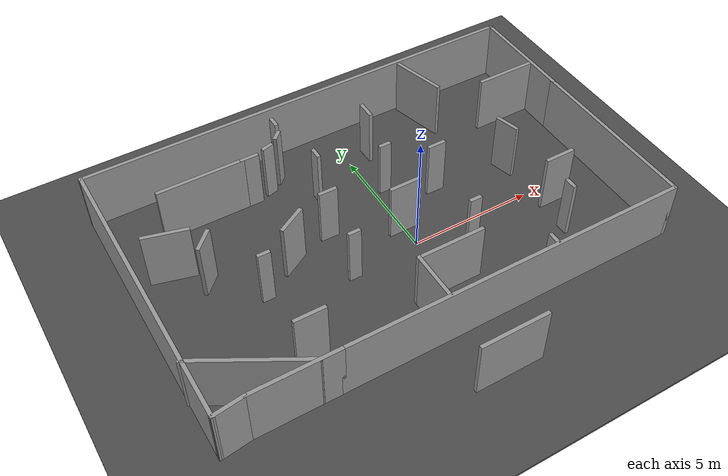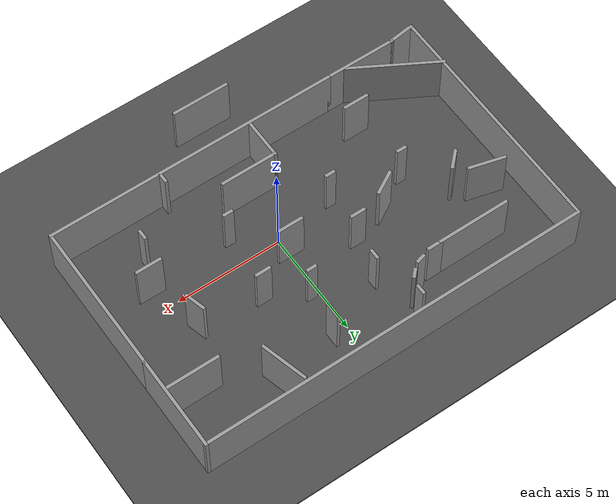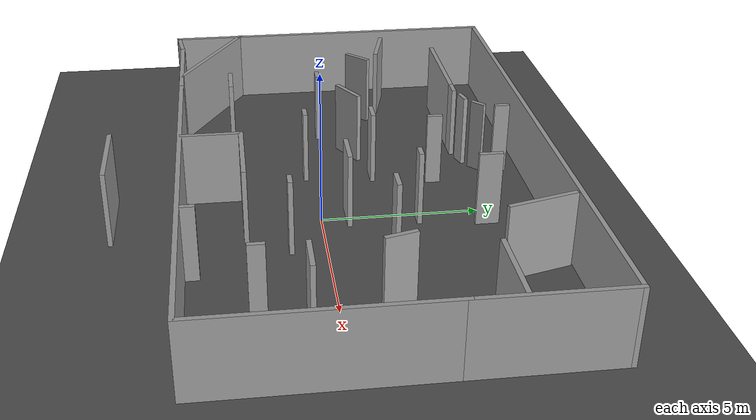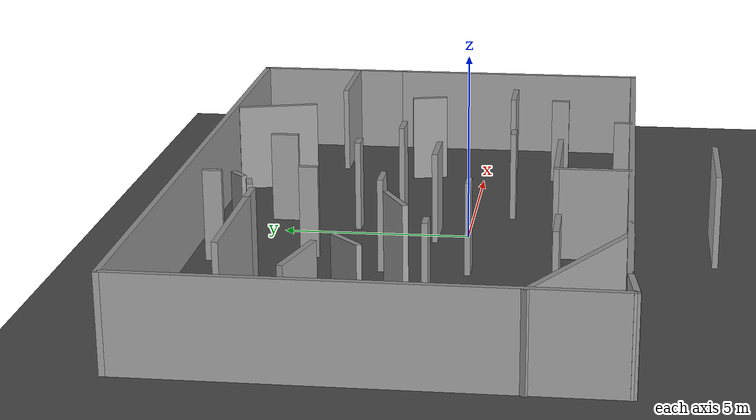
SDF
<sdf version="1.6">
 <world name="default">
  <light name="sun" type="directional">
   <pose>0 0 10 0 -0 0</pose>
   <diffuse>0.8 0.8 0.8 1</diffuse>
   <specular>0.2 0.2 0.2 1</specular>
   <attenuation>
    <range>1000</range>
    <constant>0.9</constant>
    <linear>0.01</linear>
    <quadratic>0.001</quadratic>
   </attenuation>
   <direction>-0.5 0.1 -0.9</direction>
  </light>
  <model name="asphalt_plane">
   <static>1</static>
   <link name="link">
    <collision name="collision"><geometry><box><size>200 200 0.1</size></box></geometry></collision>
    <visual name="visual">
     <cast_shadows>0</cast_shadows>
     <geometry><box><size>200 200 0.1</size></box></geometry>
     <material>
      <script>
       <uri>model://asphalt_plane/materials/scripts</uri>
       <uri>model://asphalt_plane/materials/textures</uri>
       <name>vrc/asphalt</name>
      </script>
     </material>
    </visual>
   </link>
  </model>
  <physics name="default_physics" default="0" type="ode">
   <ode>
    <solver>
     <type>quick</type>
     <iters>10</iters>
     <sor>1.3</sor>
     <use_dynamic_moi_rescaling>0</use_dynamic_moi_rescaling>
    </solver>
    <constraints>
     <cfm>0</cfm>
     <erp>0.2</erp>
     <contact_max_correcting_vel>100</contact_max_correcting_vel>
     <contact_surface_layer>0.001</contact_surface_layer>
    </constraints>
   </ode>
   <max_step_size>0.001</max_step_size>
   <real_time_factor>1</real_time_factor>
   <real_time_update_rate>1000</real_time_update_rate>
  </physics>
  <gravity>0 0 -9.8066</gravity>
  <magnetic_field>6e-06 2.3e-05 -4.2e-05</magnetic_field>
  <atmosphere type="adiabatic"/>
  <scene><ambient>0.4 0.4 0.4 1</ambient><background>0.7 0.7 0.7 1</background><shadows>1</shadows></scene>
  <spherical_coordinates>
   <surface_model>EARTH_WGS84</surface_model>
   <latitude_deg>0</latitude_deg>
   <longitude_deg>0</longitude_deg>
   <elevation>0</elevation>
   <heading_deg>0</heading_deg>
  </spherical_coordinates>
  <model name="static-obstacles">
   <pose>-0.962403 0.304793 0 0 -0 0</pose>
   <link name="Wall_0">
    <collision name="Wall_0_Collision">
     <geometry><box><size>2.75 0.15 2.5</size></box></geometry>
     <pose>0 0 1.25 0 -0 0</pose>
    </collision>
    <visual name="Wall_0_Visual">
     <pose>0 0 1.25 0 -0 0</pose>
     <geometry><box><size>2.75 0.15 2.5</size></box></geometry>
     <material>
      <script><uri>file://media/materials/scripts/gazebo.material</uri><name>Gazebo/Grey</name></script>
      <ambient>1 1 1 1</ambient>
     </material>
     <meta><layer>0</layer></meta>
    </visual>
    <pose>0.752403 -2.70479 0 0 -0 0</pose>
   </link>
   <link name="Wall_12">
    <collision name="Wall_12_Collision">
     <geometry><box><size>0.75 0.15 2.5</size></box></geometry>
     <pose>0 0 1.25 0 -0 0</pose>
    </collision>
    <visual name="Wall_12_Visual">
     <pose>0 0 1.25 0 -0 0</pose>
     <geometry><box><size>0.75 0.15 2.5</size></box></geometry>
     <material>
      <script><uri>file://media/materials/scripts/gazebo.material</uri><name>Gazebo/Grey</name></script>
      <ambient>1 1 1 1</ambient>
     </material>
     <meta><layer>0</layer></meta>
    </visual>
    <pose>-1.68881 1.66179 0 0 -0 0</pose>
   </link>
   <link name="Wall_14">
    <collision name="Wall_14_Collision">
     <geometry><box><size>0.75 0.15 2.5</size></box></geometry>
     <pose>0 0 1.25 0 -0 0</pose>
    </collision>
    <visual name="Wall_14_Visual">
     <pose>0 0 1.25 0 -0 0</pose>
     <geometry><box><size>0.75 0.15 2.5</size></box></geometry>
     <material>
      <script><uri>file://media/materials/scripts/gazebo.material</uri><name>Gazebo/Grey</name></script>
      <ambient>1 1 1 1</ambient>
     </material>
     <meta><layer>0</layer></meta>
    </visual>
    <pose>3.07609 1.73118 0 0 -0 0</pose>
   </link>
   <link name="Wall_16">
    <collision name="Wall_16_Collision">
     <geometry><box><size>0.5 0.15 2.5</size></box></geometry>
     <pose>0 0 1.25 0 -0 0</pose>
    </collision>
    <visual name="Wall_16_Visual">
     <pose>0 0 1.25 0 -0 0</pose>
     <geometry><box><size>0.5 0.15 2.5</size></box></geometry>
     <material>
      <script><uri>file://media/materials/scripts/gazebo.material</uri><name>Gazebo/Grey</name></script>
      <ambient>1 1 1 1</ambient>
     </material>
     <meta><layer>0</layer></meta>
    </visual>
    <pose>-1.86008 -0.558747 0 0 -0 0</pose>
   </link>
   <link name="Wall_18">
    <collision name="Wall_18_Collision">
     <geometry><box><size>0.5 0.15 2.5</size></box></geometry>
     <pose>0 0 1.25 0 -0 0</pose>
    </collision>
    <visual name="Wall_18_Visual">
     <pose>0 0 1.25 0 -0 0</pose>
     <geometry><box><size>0.5 0.15 2.5</size></box></geometry>
     <material>
      <script><uri>file://media/materials/scripts/gazebo.material</uri><name>Gazebo/Grey</name></script>
      <ambient>1 1 1 1</ambient>
     </material>
     <meta><layer>0</layer></meta>
    </visual>
    <pose>2.69665 -1.39145 0 0 -0 0</pose>
   </link>
   <link name="Wall_2">
    <collision name="Wall_2_Collision">
     <geometry><box><size>3.5 0.15 2.5</size></box></geometry>
     <pose>0 0 1.25 0 -0 0</pose>
    </collision>
    <visual name="Wall_2_Visual">
     <pose>0 0 1.25 0 -0 0</pose>
     <geometry><box><size>3.5 0.15 2.5</size></box></geometry>
     <material>
      <script><uri>file://media/materials/scripts/gazebo.material</uri><name>Gazebo/Grey</name></script>
      <ambient>1 1 1 1</ambient>
     </material>
     <meta><layer>0</layer></meta>
    </visual>
    <pose>-6.31249 -4.62827 0 0 -0 0</pose>
   </link>
   <link name="Wall_20">
    <collision name="Wall_20_Collision">
     <geometry><box><size>0.5 0.15 2.5</size></box></geometry>
     <pose>0 0 1.25 0 -0 0</pose>
    </collision>
    <visual name="Wall_20_Visual">
     <pose>0 0 1.25 0 -0 0</pose>
     <geometry><box><size>0.5 0.15 2.5</size></box></geometry>
     <material>
      <script><uri>file://media/materials/scripts/gazebo.material</uri><name>Gazebo/Grey</name></script>
      <ambient>1 1 1 1</ambient>
     </material>
     <meta><layer>0</layer></meta>
    </visual>
    <pose>1.37821 2.7258 0 0 -0 0</pose>
   </link>
   <link name="Wall_22">
    <collision name="Wall_22_Collision">
     <geometry><box><size>0.5 0.15 2.5</size></box></geometry>
     <pose>0 0 1.25 0 -0 0</pose>
    </collision>
    <visual name="Wall_22_Visual">
     <pose>0 0 1.25 0 -0 0</pose>
     <geometry><box><size>0.5 0.15 2.5</size></box></geometry>
     <material>
      <script><uri>file://media/materials/scripts/gazebo.material</uri><name>Gazebo/Grey</name></script>
      <ambient>1 1 1 1</ambient>
     </material>
     <meta><layer>0</layer></meta>
    </visual>
    <pose>-5.00584 0.158302 0 0 -0 0</pose>
   </link>
   <link name="Wall_24">
    <collision name="Wall_24_Collision">
     <geometry><box><size>1.25 0.15 2.5</size></box></geometry>
     <pose>0 0 1.25 0 -0 0</pose>
    </collision>
    <visual name="Wall_24_Visual">
     <pose>0 0 1.25 0 -0 0</pose>
     <geometry><box><size>1.25 0.15 2.5</size></box></geometry>
     <material>
      <script><uri>file://media/materials/scripts/gazebo.material</uri><name>Gazebo/Grey</name></script>
      <ambient>1 1 1 1</ambient>
     </material>
     <meta><layer>0</layer></meta>
    </visual>
    <pose>-3.45547 1.08096 0 0 -0 0.523599</pose>
   </link>
   <link name="Wall_26">
    <collision name="Wall_26_Collision">
     <geometry><box><size>14 0.15 2.5</size></box></geometry>
     <pose>0 0 1.25 0 -0 0</pose>
    </collision>
    <visual name="Wall_26_Visual">
     <pose>0 0 1.25 0 -0 0</pose>
     <geometry><box><size>14 0.15 2.5</size></box></geometry>
     <material>
      <script><uri>file://media/materials/scripts/gazebo.material</uri><name>Gazebo/Grey</name></script>
      <ambient>1 1 1 1</ambient>
     </material>
     <meta><layer>0</layer></meta>
    </visual>
    <pose>2.28751 -4.62827 0 0 -0 0</pose>
   </link>
   <link name="Wall_27">
    <collision name="Wall_27_Collision">
     <geometry><box><size>7.25 0.15 2.5</size></box></geometry>
     <pose>0 0 1.25 0 -0 0</pose>
    </collision>
    <visual name="Wall_27_Visual">
     <pose>0 0 1.25 0 -0 0</pose>
     <geometry><box><size>7.25 0.15 2.5</size></box></geometry>
     <material>
      <script><uri>file://media/materials/scripts/gazebo.material</uri><name>Gazebo/Grey</name></script>
      <ambient>1 1 1 1</ambient>
     </material>
     <meta><layer>0</layer></meta>
    </visual>
    <pose>9.21251 -1.07827 0 0 -0 1.5708</pose>
   </link>
   <link name="Wall_28">
    <collision name="Wall_28_Collision">
     <geometry><box><size>4.5 0.15 2.5</size></box></geometry>
     <pose>0 0 1.25 0 -0 0</pose>
    </collision>
    <visual name="Wall_28_Visual">
     <pose>0 0 1.25 0 -0 0</pose>
     <geometry><box><size>4.5 0.15 2.5</size></box></geometry>
     <material>
      <script><uri>file://media/materials/scripts/gazebo.material</uri><name>Gazebo/Grey</name></script>
      <ambient>1 1 1 1</ambient>
     </material>
     <meta><layer>0</layer></meta>
    </visual>
    <pose>9.21251 4.64673 0 0 -0 1.5708</pose>
   </link>
   <link name="Wall_29">
    <collision name="Wall_29_Collision">
     <geometry><box><size>18.5 0.15 2.5</size></box></geometry>
     <pose>0 0 1.25 0 -0 0</pose>
    </collision>
    <visual name="Wall_29_Visual">
     <pose>0 0 1.25 0 -0 0</pose>
     <geometry><box><size>18.5 0.15 2.5</size></box></geometry>
     <material>
      <script><uri>file://media/materials/scripts/gazebo.material</uri><name>Gazebo/Grey</name></script>
      <ambient>1 1 1 1</ambient>
     </material>
     <meta><layer>0</layer></meta>
    </visual>
    <pose>0.037514 6.82173 0 0 -0 3.14159</pose>
   </link>
   <link name="Wall_30">
    <collision name="Wall_30_Collision">
     <geometry><box><size>11.75 0.15 2.5</size></box></geometry>
     <pose>0 0 1.25 0 -0 0</pose>
    </collision>
    <visual name="Wall_30_Visual">
     <pose>0 0 1.25 0 -0 0</pose>
     <geometry><box><size>11.75 0.15 2.5</size></box></geometry>
     <material>
      <script><uri>file://media/materials/scripts/gazebo.material</uri><name>Gazebo/Grey</name></script>
      <ambient>1 1 1 1</ambient>
     </material>
     <meta><layer>0</layer></meta>
    </visual>
    <pose>-9.13749 1.02173 0 0 -0 -1.5708</pose>
   </link>
   <link name="Wall_31">
    <collision name="Wall_31_Collision">
     <geometry><box><size>1.30974 0.15 2.5</size></box></geometry>
     <pose>0 0 1.25 0 -0 0</pose>
    </collision>
    <visual name="Wall_31_Visual">
     <pose>0 0 1.25 0 -0 0</pose>
     <geometry><box><size>1.30974 0.15 2.5</size></box></geometry>
     <material>
      <script><uri>file://media/materials/scripts/gazebo.material</uri><name>Gazebo/Grey</name></script>
      <ambient>1 1 1 1</ambient>
     </material>
     <meta><layer>0</layer></meta>
    </visual>
    <pose>-8.56249 -4.70327 0 0 -0 0.129703</pose>
   </link>
   <link name="Wall_33">
    <collision name="Wall_33_Collision">
     <geometry><box><size>2.25 0.15 2.5</size></box></geometry>
     <pose>0 0 1.25 0 -0 0</pose>
    </collision>
    <visual name="Wall_33_Visual">
     <pose>0 0 1.25 0 -0 0</pose>
     <geometry><box><size>2.25 0.15 2.5</size></box></geometry>
     <material>
      <script><uri>file://media/materials/scripts/gazebo.material</uri><name>Gazebo/Grey</name></script>
      <ambient>1 1 1 1</ambient>
     </material>
     <meta><layer>0</layer></meta>
    </visual>
    <pose>4.7182 5.60791 0 0 -0 -1.309</pose>
   </link>
   <link name="Wall_35">
    <collision name="Wall_35_Collision">
     <geometry><box><size>2.5 0.15 2.5</size></box></geometry>
     <pose>0 0 1.25 0 -0 0</pose>
    </collision>
    <visual name="Wall_35_Visual">
     <pose>0 0 1.25 0 -0 0</pose>
     <geometry><box><size>2.5 0.15 2.5</size></box></geometry>
     <material>
      <script><uri>file://media/materials/scripts/gazebo.material</uri><name>Gazebo/Grey</name></script>
      <ambient>1 1 1 1</ambient>
     </material>
     <meta><layer>0</layer></meta>
    </visual>
    <pose>7.90112 3.92375 0 0 -0 0</pose>
   </link>
   <link name="Wall_38">
    <collision name="Wall_38_Collision">
     <geometry><box><size>0.75 0.15 2.5</size></box></geometry>
     <pose>0 0 1.25 0 -0 0</pose>
    </collision>
    <visual name="Wall_38_Visual">
     <pose>0 0 1.25 0 -0 0</pose>
     <geometry><box><size>0.75 0.15 2.5</size></box></geometry>
     <material>
      <script><uri>file://media/materials/scripts/gazebo.material</uri><name>Gazebo/Grey</name></script>
      <ambient>1 1 1 1</ambient>
     </material>
     <meta><layer>0</layer></meta>
    </visual>
    <pose>-3.34872 4.71465 0 0 -0 0</pose>
   </link>
   <link name="Wall_40">
    <collision name="Wall_40_Collision">
     <geometry><box><size>0.5 0.15 2.5</size></box></geometry>
     <pose>0 0 1.25 0 -0 0</pose>
    </collision>
    <visual name="Wall_40_Visual">
     <pose>0 0 1.25 0 -0 0</pose>
     <geometry><box><size>0.5 0.15 2.5</size></box></geometry>
     <material>
      <script><uri>file://media/materials/scripts/gazebo.material</uri><name>Gazebo/Grey</name></script>
      <ambient>1 1 1 1</ambient>
     </material>
     <meta><layer>0</layer></meta>
    </visual>
    <pose>-1.0899 3.6557 0 0 -0 -1.5708</pose>
   </link>
   <link name="Wall_42">
    <collision name="Wall_42_Collision">
     <geometry><box><size>0.75 0.15 2.5</size></box></geometry>
     <pose>0 0 1.25 0 -0 0</pose>
    </collision>
    <visual name="Wall_42_Visual">
     <pose>0 0 1.25 0 -0 0</pose>
     <geometry><box><size>0.75 0.15 2.5</size></box></geometry>
     <material>
      <script><uri>file://media/materials/scripts/gazebo.material</uri><name>Gazebo/Grey</name></script>
      <ambient>1 1 1 1</ambient>
     </material>
     <meta><layer>0</layer></meta>
    </visual>
    <pose>1.79458 4.83337 0 0 -0 -1.5708</pose>
   </link>
   <link name="Wall_44">
    <collision name="Wall_44_Collision">
     <geometry><box><size>1.25 0.15 2.5</size></box></geometry>
     <pose>0 0 1.25 0 -0 0</pose>
    </collision>
    <visual name="Wall_44_Visual">
     <pose>0 0 1.25 0 -0 0</pose>
     <geometry><box><size>1.25 0.15 2.5</size></box></geometry>
     <material>
      <script><uri>file://media/materials/scripts/gazebo.material</uri><name>Gazebo/Grey</name></script>
      <ambient>1 1 1 1</ambient>
     </material>
     <meta><layer>0</layer></meta>
    </visual>
    <pose>6.71783 -1.14736 0 0 -0 0</pose>
   </link>
   <link name="Wall_46">
    <collision name="Wall_46_Collision">
     <geometry><box><size>1 0.15 2.5</size></box></geometry>
     <pose>0 0 1.25 0 -0 0</pose>
    </collision>
    <visual name="Wall_46_Visual">
     <pose>0 0 1.25 0 -0 0</pose>
     <geometry><box><size>1 0.15 2.5</size></box></geometry>
     <material>
      <script><uri>file://media/materials/scripts/gazebo.material</uri><name>Gazebo/Grey</name></script>
      <ambient>1 1 1 1</ambient>
     </material>
     <meta><layer>0</layer></meta>
    </visual>
    <pose>6.09173 1.32661 0 0 -0 -1.309</pose>
   </link>
   <link name="Wall_48">
    <collision name="Wall_48_Collision">
     <geometry><box><size>2 0.15 2.5</size></box></geometry>
     <pose>0 0 1.25 0 -0 0</pose>
    </collision>
    <visual name="Wall_48_Visual">
     <pose>0 0 1.25 0 -0 0</pose>
     <geometry><box><size>2 0.15 2.5</size></box></geometry>
     <material>
      <script><uri>file://media/materials/scripts/gazebo.material</uri><name>Gazebo/Grey</name></script>
      <ambient>1 1 1 1</ambient>
     </material>
     <meta><layer>0</layer></meta>
    </visual>
    <pose>-0.547597 -3.62979 0 0 -0 -1.5708</pose>
   </link>
   <link name="Wall_5">
    <collision name="Wall_5_Collision">
     <geometry><box><size>2.75 0.15 2.5</size></box></geometry>
     <pose>0 0 1.25 0 -0 0</pose>
    </collision>
    <visual name="Wall_5_Visual">
     <pose>0 0 1.25 0 -0 0</pose>
     <geometry><box><size>2.75 0.15 2.5</size></box></geometry>
     <material>
      <script><uri>file://media/materials/scripts/gazebo.material</uri><name>Gazebo/Grey</name></script>
      <ambient>1 1 1 1</ambient>
     </material>
     <meta><layer>0</layer></meta>
    </visual>
    <pose>0.458977 -6.82174 0 0 -0 0</pose>
   </link>
   <link name="Wall_50">
    <collision name="Wall_50_Collision">
     <geometry><box><size>1.25 0.15 2.5</size></box></geometry>
     <pose>0 0 1.25 0 -0 0</pose>
    </collision>
    <visual name="Wall_50_Visual">
     <pose>0 0 1.25 0 -0 0</pose>
     <geometry><box><size>1.25 0.15 2.5</size></box></geometry>
     <material>
      <script><uri>file://media/materials/scripts/gazebo.material</uri><name>Gazebo/Grey</name></script>
      <ambient>1 1 1 1</ambient>
     </material>
     <meta><layer>0</layer></meta>
    </visual>
    <pose>-4.86662 -2.91527 0 0 -0 0</pose>
   </link>
   <link name="Wall_52">
    <collision name="Wall_52_Collision">
     <geometry><box><size>1 0.15 2.5</size></box></geometry>
     <pose>0 0 1.25 0 -0 0</pose>
    </collision>
    <visual name="Wall_52_Visual">
     <pose>0 0 1.25 0 -0 0</pose>
     <geometry><box><size>1 0.15 2.5</size></box></geometry>
     <material>
      <script><uri>file://media/materials/scripts/gazebo.material</uri><name>Gazebo/Grey</name></script>
      <ambient>1 1 1 1</ambient>
     </material>
     <meta><layer>0</layer></meta>
    </visual>
    <pose>-6.51182 1.80502 0 0 -0 0.785398</pose>
   </link>
   <link name="Wall_54">
    <collision name="Wall_54_Collision">
     <geometry><box><size>1.75 0.15 2.5</size></box></geometry>
     <pose>0 0 1.25 0 -0 0</pose>
    </collision>
    <visual name="Wall_54_Visual">
     <pose>0 0 1.25 0 -0 0</pose>
     <geometry><box><size>1.75 0.15 2.5</size></box></geometry>
     <material>
      <script><uri>file://media/materials/scripts/gazebo.material</uri><name>Gazebo/Grey</name></script>
      <ambient>1 1 1 1</ambient>
     </material>
     <meta><layer>0</layer></meta>
    </visual>
    <pose>-7.52837 2.73969 0 0 -0 -0.261799</pose>
   </link>
   <link name="Wall_56">
    <collision name="Wall_56_Collision">
     <geometry><box><size>0.5 0.15 2.5</size></box></geometry>
     <pose>0 0 1.25 0 -0 0</pose>
    </collision>
    <visual name="Wall_56_Visual">
     <pose>0 0 1.25 0 -0 0</pose>
     <geometry><box><size>0.5 0.15 2.5</size></box></geometry>
     <material>
      <script><uri>file://media/materials/scripts/gazebo.material</uri><name>Gazebo/Grey</name></script>
      <ambient>1 1 1 1</ambient>
     </material>
     <meta><layer>0</layer></meta>
    </visual>
    <pose>-2.50268 4.89952 0 0 -0 0.261799</pose>
   </link>
   <link name="Wall_58">
    <collision name="Wall_58_Collision">
     <geometry><box><size>0.5 0.15 2.5</size></box></geometry>
     <pose>0 0 1.25 0 -0 0</pose>
    </collision>
    <visual name="Wall_58_Visual">
     <pose>0 0 1.25 0 -0 0</pose>
     <geometry><box><size>0.5 0.15 2.5</size></box></geometry>
     <material>
      <script><uri>file://media/materials/scripts/gazebo.material</uri><name>Gazebo/Grey</name></script>
      <ambient>1 1 1 1</ambient>
     </material>
     <meta><layer>0</layer></meta>
    </visual>
    <pose>-1.89664 5.30364 0 0 -0 0.785398</pose>
   </link>
   <link name="Wall_60">
    <collision name="Wall_60_Collision">
     <geometry><box><size>0.5 0.15 2.5</size></box></geometry>
     <pose>0 0 1.25 0 -0 0</pose>
    </collision>
    <visual name="Wall_60_Visual">
     <pose>0 0 1.25 0 -0 0</pose>
     <geometry><box><size>0.5 0.15 2.5</size></box></geometry>
     <material>
      <script><uri>file://media/materials/scripts/gazebo.material</uri><name>Gazebo/Grey</name></script>
      <ambient>1 1 1 1</ambient>
     </material>
     <meta><layer>0</layer></meta>
    </visual>
    <pose>-1.64819 6.05275 0 0 -0 1.5708</pose>
   </link>
   <link name="Wall_62">
    <collision name="Wall_62_Collision">
     <geometry><box><size>3.5 0.15 2.5</size></box></geometry>
     <pose>0 0 1.25 0 -0 0</pose>
    </collision>
    <visual name="Wall_62_Visual">
     <pose>0 0 1.25 0 -0 0</pose>
     <geometry><box><size>3.5 0.15 2.5</size></box></geometry>
     <material>
      <script><uri>file://media/materials/scripts/gazebo.material</uri><name>Gazebo/Grey</name></script>
      <ambient>1 1 1 1</ambient>
     </material>
     <meta><layer>0</layer></meta>
    </visual>
    <pose>-5.32372 4.71465 0 0 -0 3.14159</pose>
   </link>
   <link name="Wall_64">
    <collision name="Wall_64_Collision">
     <geometry><box><size>0.5 0.15 2.5</size></box></geometry>
     <pose>0 0 1.25 0 -0 0</pose>
    </collision>
    <visual name="Wall_64_Visual">
     <pose>0 0 1.25 0 -0 0</pose>
     <geometry><box><size>0.5 0.15 2.5</size></box></geometry>
     <material>
      <script><uri>file://media/materials/scripts/gazebo.material</uri><name>Gazebo/Grey</name></script>
      <ambient>1 1 1 1</ambient>
     </material>
     <meta><layer>0</layer></meta>
    </visual>
    <pose>3.93468 -4.3686 0 0 -0 1.5708</pose>
   </link>
   <link name="Wall_66">
    <collision name="Wall_66_Collision">
     <geometry><box><size>0.5 0.15 2.5</size></box></geometry>
     <pose>0 0 1.25 0 -0 0</pose>
    </collision>
    <visual name="Wall_66_Visual">
     <pose>0 0 1.25 0 -0 0</pose>
     <geometry><box><size>0.5 0.15 2.5</size></box></geometry>
     <material>
      <script><uri>file://media/materials/scripts/gazebo.material</uri><name>Gazebo/Grey</name></script>
      <ambient>1 1 1 1</ambient>
     </material>
     <meta><layer>0</layer></meta>
    </visual>
    <pose>6.12131 -2.53198 0 0 -0 -1.5708</pose>
   </link>
   <link name="Wall_68">
    <collision name="Wall_68_Collision">
     <geometry><box><size>4.5 0.15 2.5</size></box></geometry>
     <pose>0 0 1.25 0 -0 0</pose>
    </collision>
    <visual name="Wall_68_Visual">
     <pose>0 0 1.25 0 -0 0</pose>
     <geometry><box><size>4.5 0.15 2.5</size></box></geometry>
     <material>
      <script><uri>file://media/materials/scripts/gazebo.material</uri><name>Gazebo/Grey</name></script>
      <ambient>1 1 1 1</ambient>
     </material>
     <meta><layer>0</layer></meta>
    </visual>
    <pose>-7.30146 -3.53753 0 0 -0 -0.523599</pose>
   </link>
   <link name="Wall_8">
    <collision name="Wall_8_Collision">
     <geometry><box><size>1.25 0.15 2.5</size></box></geometry>
     <pose>0 0 1.25 0 -0 0</pose>
    </collision>
    <visual name="Wall_8_Visual">
     <pose>0 0 1.25 0 -0 0</pose>
     <geometry><box><size>1.25 0.15 2.5</size></box></geometry>
     <material>
      <script><uri>file://media/materials/scripts/gazebo.material</uri><name>Gazebo/Grey</name></script>
      <ambient>1 1 1 1</ambient>
     </material>
     <meta><layer>0</layer></meta>
    </visual>
    <pose>0.911847 0.536999 0 0 -0 0</pose>
   </link>
   <static>1</static>
  </model>
 </world>
</sdf>
